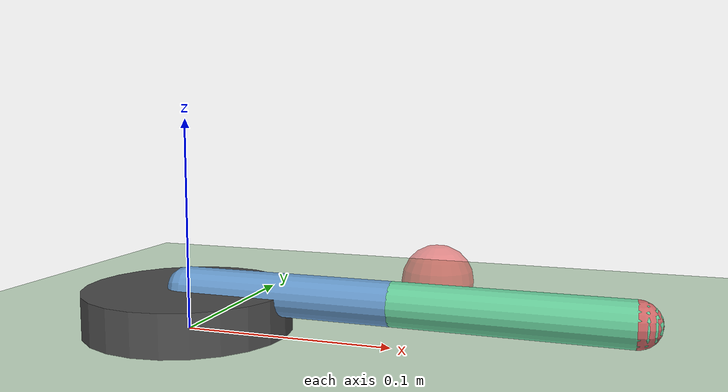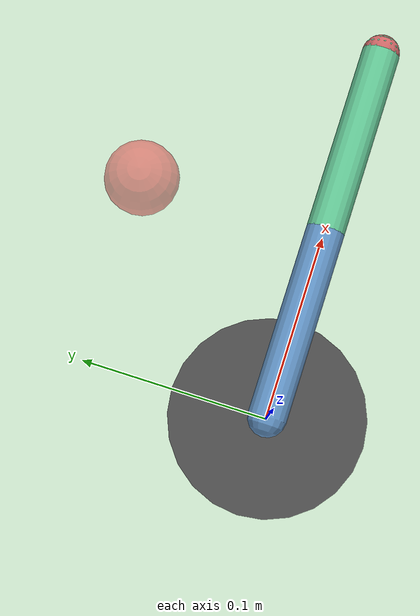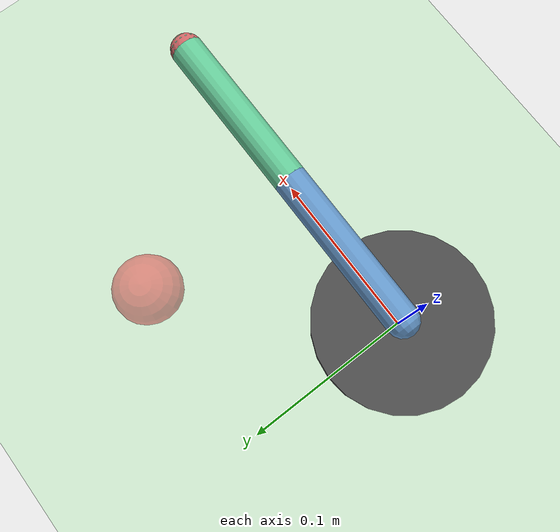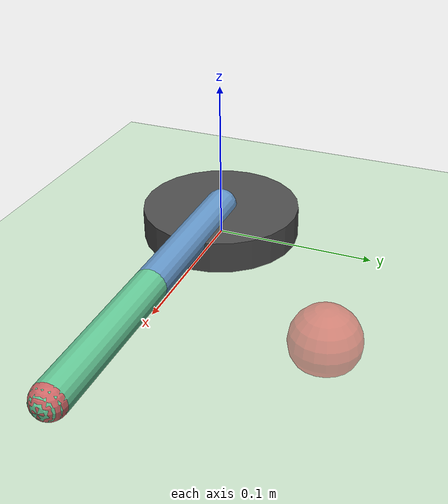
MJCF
<!-- Reacher: 2-link planar arm reaching to a target
     Based on MuJoCo Gymnasium Reacher-v4 environment
     Task: Control 2 joints to reach a randomly placed target -->
<mujoco model="reacher">
    <option timestep="0.02" gravity="0 0 -9.81"/>

    <default>
        <joint damping="0.1" armature="0.01"/>
        <geom friction="1 0.1 0.1"/>
    </default>

    <worldbody>
        <!-- Ground plane -->
        <geom type="plane" size="2 2 0.1" rgba="0.8 0.9 0.8 1"/>

        <!-- Base of the arm (fixed to world) -->
        <body name="base" pos="0 0 0.01">
            <geom type="cylinder" size="0.05 0.01" rgba="0.3 0.3 0.3 1"/>

            <!-- First link -->
            <body name="link0" pos="0 0 0.01">
                <joint name="joint0" type="hinge" axis="0 0 1" range="-3.14 3.14"/>
                <geom type="capsule" fromto="0 0 0 0.1 0 0" size="0.01" rgba="0.4 0.6 0.8 1"/>

                <!-- Second link -->
                <body name="link1" pos="0.1 0 0">
                    <joint name="joint1" type="hinge" axis="0 0 1" range="-3.14 3.14"/>
                    <geom type="capsule" fromto="0 0 0 0.1 0 0" size="0.01" rgba="0.4 0.8 0.6 1"/>

                    <!-- Fingertip (end effector) -->
                    <body name="fingertip" pos="0.1 0 0">
                        <geom name="fingertip" type="sphere" size="0.01" rgba="0.8 0.4 0.4 1"/>
                    </body>
                </body>
            </body>
        </body>

        <!-- Target (position randomized during reset) -->
        <body name="target" pos="0.1 0.1 0.01">
            <geom name="target" type="sphere" size="0.02" rgba="0.9 0.2 0.2 0.5"/>
        </body>
    </worldbody>

    <actuator>
        <motor joint="joint0" ctrlrange="-1 1" gear="50"/>
        <motor joint="joint1" ctrlrange="-1 1" gear="50"/>
    </actuator>

    <sensor>
        <jointpos joint="joint0"/>
        <jointpos joint="joint1"/>
        <jointvel joint="joint0"/>
        <jointvel joint="joint1"/>
        <framepos objtype="geom" objname="fingertip"/>
        <framepos objtype="geom" objname="target"/>
    </sensor>
</mujoco>
